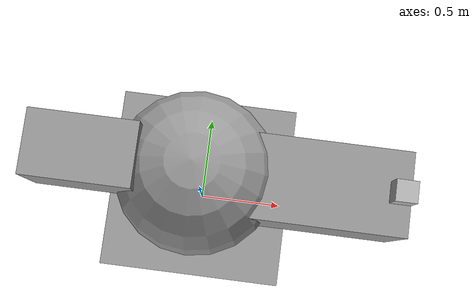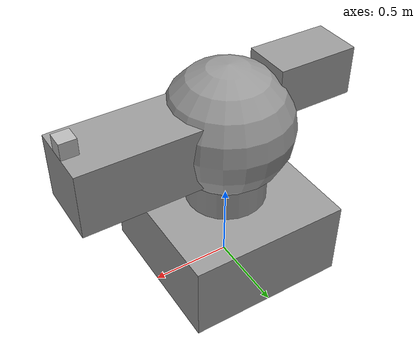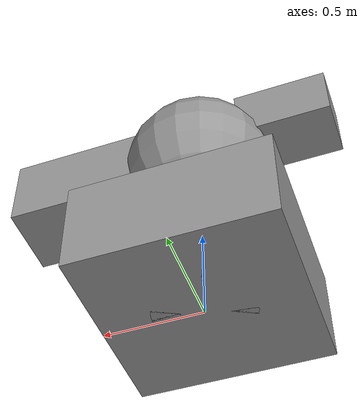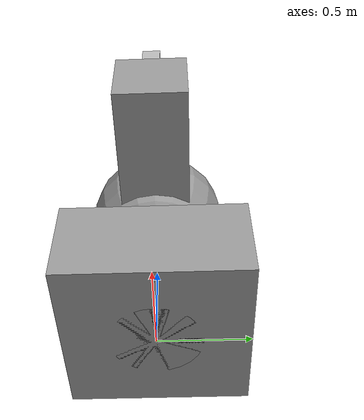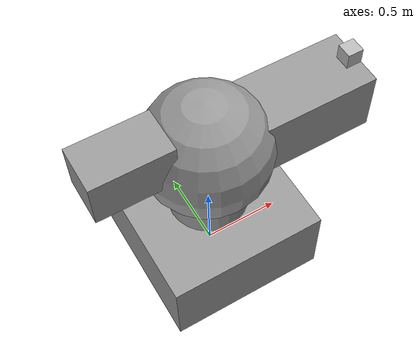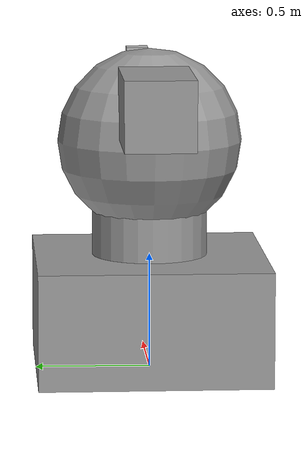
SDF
<?xml version='1.0'?>
<sdf version='1.6'>
  <model name='Gimbal_fixed'>
    <link name='barrel_link'>
      <pose frame=''>0.5 -0 1 0 -0 0</pose>
      <inertial>
        <mass>1</mass>
        <inertia>
          <ixx>0.166667</ixx>
          <ixy>0</ixy>
          <ixz>0</ixz>
          <iyy>0.166667</iyy>
          <iyz>0</iyz>
          <izz>0.166667</izz>
        </inertia>
        <pose frame=''>-0.5 0 0 0 -0 0</pose>
      </inertial>
      <self_collide>0</self_collide>
      <kinematic>0</kinematic>
      <visual name='ModelPreview_1::barrel_link::visual_3'>
        <pose frame=''>0 0 0 0 -0 0</pose>
        <geometry>
          <box>
            <size>1 0.4 0.4</size>
          </box>
        </geometry>
        <material>
          <lighting>1</lighting>
          <script>
            <uri>file://media/materials/scripts/gazebo.material</uri>
            <name>Gazebo/Grey</name>
          </script>
          <ambient>0.3 0.3 0.3 1</ambient>
          <diffuse>0.7 0.7 0.7 1</diffuse>
          <specular>0.01 0.01 0.01 1</specular>
          <emissive>0 0 0 1</emissive>
          <shader type='vertex'>
            <normal_map>__default__</normal_map>
          </shader>
        </material>
        <cast_shadows>1</cast_shadows>
        <transparency>0</transparency>
      </visual>
      <collision name='collision'>
        <laser_retro>0</laser_retro>
        <max_contacts>10</max_contacts>
        <pose frame=''>0 0 0 0 -0 0</pose>
        <geometry>
          <box>
            <size>1 0.4 0.4</size>
          </box>
        </geometry>
        <surface>
          <friction>
            <ode>
              <mu>1</mu>
              <mu2>1</mu2>
              <fdir1>0 0 0</fdir1>
              <slip1>0</slip1>
              <slip2>0</slip2>
            </ode>
            <torsional>
              <coefficient>1</coefficient>
              <patch_radius>0</patch_radius>
              <surface_radius>0</surface_radius>
              <use_patch_radius>1</use_patch_radius>
              <ode>
                <slip>0</slip>
              </ode>
            </torsional>
          </friction>
          <bounce>
            <restitution_coefficient>0</restitution_coefficient>
            <threshold>1e+06</threshold>
          </bounce>
          <contact>
            <collide_without_contact>0</collide_without_contact>
            <collide_without_contact_bitmask>1</collide_without_contact_bitmask>
            <collide_bitmask>1</collide_bitmask>
            <ode>
              <soft_cfm>0</soft_cfm>
              <soft_erp>0.2</soft_erp>
              <kp>1e+13</kp>
              <kd>1</kd>
              <max_vel>0.01</max_vel>
              <min_depth>0</min_depth>
            </ode>
            <bullet>
              <split_impulse>1</split_impulse>
              <split_impulse_penetration_threshold>-0.01</split_impulse_penetration_threshold>
              <soft_cfm>0</soft_cfm>
              <soft_erp>0.2</soft_erp>
              <kp>1e+13</kp>
              <kd>1</kd>
            </bullet>
          </contact>
        </surface>
      </collision>
    </link>
    <link name='link_0'>
      <pose frame=''>-0 0 0.25 0 -0 0</pose>
      <inertial>
        <mass>100</mass>
        <inertia>
          <ixx>0.166667</ixx>
          <ixy>0</ixy>
          <ixz>0</ixz>
          <iyy>0.166667</iyy>
          <iyz>0</iyz>
          <izz>0.166667</izz>
        </inertia>
        <pose frame=''>0 0 0 0 -0 0</pose>
      </inertial>
      <self_collide>0</self_collide>
      <kinematic>0</kinematic>
      <visual name='visual'>
        <pose frame=''>0 0 0 0 -0 0</pose>
        <geometry>
          <box>
            <size>1 1 0.5</size>
          </box>
        </geometry>
        <material>
          <lighting>1</lighting>
          <script>
            <uri>file://media/materials/scripts/gazebo.material</uri>
            <name>Gazebo/Grey</name>
          </script>
          <ambient>0.3 0.3 0.3 1</ambient>
          <diffuse>0.7 0.7 0.7 1</diffuse>
          <specular>0.01 0.01 0.01 1</specular>
          <emissive>0 0 0 1</emissive>
          <shader type='vertex'>
            <normal_map>__default__</normal_map>
          </shader>
        </material>
        <cast_shadows>1</cast_shadows>
        <transparency>0</transparency>
      </visual>
      <collision name='collision'>
        <laser_retro>0</laser_retro>
        <max_contacts>10</max_contacts>
        <pose frame=''>0 0 0 0 -0 0</pose>
        <geometry>
          <box>
            <size>1 1 0.5</size>
          </box>
        </geometry>
        <surface>
          <friction>
            <ode>
              <mu>1</mu>
              <mu2>1</mu2>
              <fdir1>0 0 0</fdir1>
              <slip1>0</slip1>
              <slip2>0</slip2>
            </ode>
            <torsional>
              <coefficient>1</coefficient>
              <patch_radius>0</patch_radius>
              <surface_radius>0</surface_radius>
              <use_patch_radius>1</use_patch_radius>
              <ode>
                <slip>0</slip>
              </ode>
            </torsional>
          </friction>
          <bounce>
            <restitution_coefficient>0</restitution_coefficient>
            <threshold>1e+06</threshold>
          </bounce>
          <contact>
            <collide_without_contact>0</collide_without_contact>
            <collide_without_contact_bitmask>1</collide_without_contact_bitmask>
            <collide_bitmask>1</collide_bitmask>
            <ode>
              <soft_cfm>0</soft_cfm>
              <soft_erp>0.2</soft_erp>
              <kp>1e+13</kp>
              <kd>1</kd>
              <max_vel>0.01</max_vel>
              <min_depth>0</min_depth>
            </ode>
            <bullet>
              <split_impulse>1</split_impulse>
              <split_impulse_penetration_threshold>-0.01</split_impulse_penetration_threshold>
              <soft_cfm>0</soft_cfm>
              <soft_erp>0.2</soft_erp>
              <kp>1e+13</kp>
              <kd>1</kd>
            </bullet>
          </contact>
        </surface>
      </collision>
    </link>
    <link name='link_1'>
      <pose frame=''>-0 0 0.5 0 -0 0</pose>
      <inertial>
        <mass>1</mass>
        <inertia>
          <ixx>0.145833</ixx>
          <ixy>0</ixy>
          <ixz>0</ixz>
          <iyy>0.145833</iyy>
          <iyz>0</iyz>
          <izz>0.125</izz>
        </inertia>
        <pose frame=''>0 0 0 0 -0 0</pose>
      </inertial>
      <self_collide>0</self_collide>
      <kinematic>0</kinematic>
      <gravity>0</gravity>
      <visual name='visual'>
        <pose frame=''>0 0 0 0 -0 0</pose>
        <geometry>
          <cylinder>
            <radius>0.25</radius>
            <length>1</length>
          </cylinder>
        </geometry>
        <material>
          <lighting>1</lighting>
          <script>
            <uri>file://media/materials/scripts/gazebo.material</uri>
            <name>Gazebo/Grey</name>
          </script>
          <ambient>0.3 0.3 0.3 1</ambient>
          <diffuse>0.7 0.7 0.7 1</diffuse>
          <specular>0.01 0.01 0.01 1</specular>
          <emissive>0 0 0 1</emissive>
          <shader type='vertex'>
            <normal_map>__default__</normal_map>
          </shader>
        </material>
        <cast_shadows>1</cast_shadows>
        <transparency>0</transparency>
      </visual>
    </link>
    <link name='link_2'>
      <pose frame=''>0 0 1 0 -0 0</pose>
      <inertial>
        <mass>1</mass>
        <inertia>
          <ixx>0.1</ixx>
          <ixy>0</ixy>
          <ixz>0</ixz>
          <iyy>0.1</iyy>
          <iyz>0</iyz>
          <izz>0.1</izz>
        </inertia>
        <pose frame=''>0 0 0 0 -0 0</pose>
      </inertial>
      <self_collide>0</self_collide>
      <kinematic>0</kinematic>
      <visual name='visual'>
        <pose frame=''>0 0 0 0 -0 0</pose>
        <geometry>
          <sphere>
            <radius>0.4</radius>
          </sphere>
        </geometry>
        <material>
          <lighting>1</lighting>
          <script>
            <uri>file://media/materials/scripts/gazebo.material</uri>
            <name>Gazebo/Grey</name>
          </script>
          <ambient>0.3 0.3 0.3 1</ambient>
          <diffuse>0.7 0.7 0.7 1</diffuse>
          <specular>0.01 0.01 0.01 1</specular>
          <emissive>0 0 0 1</emissive>
          <shader type='vertex'>
            <normal_map>__default__</normal_map>
          </shader>
        </material>
        <cast_shadows>1</cast_shadows>
        <transparency>0</transparency>
      </visual>
      <collision name='collision'>
        <laser_retro>0</laser_retro>
        <max_contacts>10</max_contacts>
        <pose frame=''>0 0 0 0 -0 0</pose>
        <geometry>
          <sphere>
            <radius>0.4</radius>
          </sphere>
        </geometry>
        <surface>
          <friction>
            <ode>
              <mu>1</mu>
              <mu2>1</mu2>
              <fdir1>0 0 0</fdir1>
              <slip1>0</slip1>
              <slip2>0</slip2>
            </ode>
            <torsional>
              <coefficient>1</coefficient>
              <patch_radius>0</patch_radius>
              <surface_radius>0</surface_radius>
              <use_patch_radius>1</use_patch_radius>
              <ode>
                <slip>0</slip>
              </ode>
            </torsional>
          </friction>
          <bounce>
            <restitution_coefficient>0</restitution_coefficient>
            <threshold>1e+06</threshold>
          </bounce>
          <contact>
            <collide_without_contact>0</collide_without_contact>
            <collide_without_contact_bitmask>1</collide_without_contact_bitmask>
            <collide_bitmask>1</collide_bitmask>
            <ode>
              <soft_cfm>0</soft_cfm>
              <soft_erp>0.2</soft_erp>
              <kp>1e+13</kp>
              <kd>1</kd>
              <max_vel>0.01</max_vel>
              <min_depth>0</min_depth>
            </ode>
            <bullet>
              <split_impulse>1</split_impulse>
              <split_impulse_penetration_threshold>-0.01</split_impulse_penetration_threshold>
              <soft_cfm>0</soft_cfm>
              <soft_erp>0.2</soft_erp>
              <kp>1e+13</kp>
              <kd>1</kd>
            </bullet>
          </contact>
        </surface>
      </collision>
    </link>
    <link name='mainboard_link'>
      <pose frame=''>-0.5 -0 1.2 0 -4e-06 4e-05</pose>
      <gravity>0</gravity>
      <inertial>
        <mass>1</mass>
        <inertia>
          <ixx>0.166667</ixx>
          <ixy>0</ixy>
          <ixz>0</ixz>
          <iyy>0.166667</iyy>
          <iyz>0</iyz>
          <izz>0.166667</izz>
        </inertia>
        <pose frame=''>0 0 0 0 -0 0</pose>
      </inertial>
      <self_collide>0</self_collide>
      <kinematic>0</kinematic>
      <sensor name='imu_sensor' type='imu'>
        <always_on>1</always_on>
        <update_rate>100</update_rate>
        <visualize>1</visualize>
        <topic>__default_topic__</topic>
        <plugin name='imu_plugin' filename='libgazebo_ros_imu_sensor.so'>
          <topicName>imu</topicName>
          <bodyName>imu_link</bodyName>
          <updateRateHZ>10.0</updateRateHZ>
          <gaussianNoise>0.0</gaussianNoise>
          <xyzOffset>0 0 0</xyzOffset>
          <rpyOffset>0 0 0</rpyOffset>
          <frameName>imu_link</frameName>
        </plugin>
        <pose frame=''>0 0 0 0 -0 0</pose>
      </sensor>
      <visual name='visual'>
        <pose frame=''>0 0 0 0 -0 0</pose>
        <geometry>
          <box>
            <size>0.5 0.3 0.3</size>
          </box>
        </geometry>
        <material>
          <lighting>1</lighting>
          <script>
            <uri>file://media/materials/scripts/gazebo.material</uri>
            <name>Gazebo/Grey</name>
          </script>
          <ambient>0.3 0.3 0.3 1</ambient>
          <diffuse>0.7 0.7 0.7 1</diffuse>
          <specular>0.01 0.01 0.01 1</specular>
          <emissive>0 0 0 1</emissive>
          <shader type='vertex'>
            <normal_map>__default__</normal_map>
          </shader>
        </material>
        <cast_shadows>1</cast_shadows>
        <transparency>0</transparency>
      </visual>
      <collision name='collision'>
        <laser_retro>0</laser_retro>
        <max_contacts>10</max_contacts>
        <pose frame=''>0 0 0 0 -0 0</pose>
        <geometry>
          <box>
            <size>0.5 0.3 0.3</size>
          </box>
        </geometry>
        <surface>
          <friction>
            <ode>
              <mu>1</mu>
              <mu2>1</mu2>
              <fdir1>0 0 0</fdir1>
              <slip1>0</slip1>
              <slip2>0</slip2>
            </ode>
            <torsional>
              <coefficient>1</coefficient>
              <patch_radius>0</patch_radius>
              <surface_radius>0</surface_radius>
              <use_patch_radius>1</use_patch_radius>
              <ode>
                <slip>0</slip>
              </ode>
            </torsional>
          </friction>
          <bounce>
            <restitution_coefficient>0</restitution_coefficient>
            <threshold>1e+06</threshold>
          </bounce>
          <contact>
            <collide_without_contact>0</collide_without_contact>
            <collide_without_contact_bitmask>1</collide_without_contact_bitmask>
            <collide_bitmask>1</collide_bitmask>
            <ode>
              <soft_cfm>0</soft_cfm>
              <soft_erp>0.2</soft_erp>
              <kp>1e+13</kp>
              <kd>1</kd>
              <max_vel>0.01</max_vel>
              <min_depth>0</min_depth>
            </ode>
            <bullet>
              <split_impulse>1</split_impulse>
              <split_impulse_penetration_threshold>-0.01</split_impulse_penetration_threshold>
              <soft_cfm>0</soft_cfm>
              <soft_erp>0.2</soft_erp>
              <kp>1e+13</kp>
              <kd>1</kd>
            </bullet>
          </contact>
        </surface>
      </collision>
    </link>
    <model name='camera'>
      <link name='link'>
        <gravity>0</gravity>
        <pose frame=''>0.05 0.05 0.05 0 -0 0</pose>
        <inertial>
          <mass>0.1</mass>
          <inertia>
            <ixx>1</ixx>
            <ixy>0</ixy>
            <ixz>0</ixz>
            <iyy>1</iyy>
            <iyz>0</iyz>
            <izz>1</izz>
          </inertia>
        </inertial>
        <visual name='visual'>
          <geometry>
            <box>
              <size>0.1 0.1 0.1</size>
            </box>
          </geometry>
        </visual>
        <sensor name='camera' type='camera'>
          <camera name='__default__'>
            <horizontal_fov>1.047</horizontal_fov>
            <image>
              <width>320</width>
              <height>240</height>
            </image>
            <clip>
              <near>0.1</near>
              <far>100</far>
            </clip>
          </camera>
          <plugin name='camera_controller' filename='libgazebo_ros_camera.so'>
            <alwaysOn>true</alwaysOn>
            <updateRate>0.0</updateRate>
            <cameraName>rrbot/camera1</cameraName>
            <imageTopicName>image_raw</imageTopicName>
            <cameraInfoTopicName>camera_info</cameraInfoTopicName>
            <frameName>camera_link</frameName>
            <hackBaseline>0.07</hackBaseline>
            <distortionK1>0.0</distortionK1>
            <distortionK2>0.0</distortionK2>
            <distortionK3>0.0</distortionK3>
            <distortionT1>0.0</distortionT1>
            <distortionT2>0.0</distortionT2>
          </plugin>
          <always_on>1</always_on>
          <update_rate>30</update_rate>
          <visualize>1</visualize>
        </sensor>
        <self_collide>0</self_collide>
        <kinematic>0</kinematic>
      </link>
      <pose frame=''>0.9 -0.05 1.2 0 0 0</pose>
    </model>
    <joint name='gimbal_pitch_joint' type='revolute'>
      <parent>link_2</parent>
      <child>barrel_link</child>
      <pose frame=''>-0.5 0 0 0 -0 0</pose>
      <axis>
        <xyz>0 1 0</xyz>
        <use_parent_model_frame>0</use_parent_model_frame>
        <limit>
          <lower>-1.79769e+308</lower>
          <upper>1.79769e+308</upper>
          <effort>-100</effort>
          <velocity>-20</velocity>
        </limit>
        <dynamics>
          <spring_reference>0</spring_reference>
          <spring_stiffness>0</spring_stiffness>
          <damping>0</damping>
          <friction>0</friction>
        </dynamics>
      </axis>
      <physics>
        <ode>
          <limit>
            <cfm>0</cfm>
            <erp>0.2</erp>
          </limit>
          <suspension>
            <cfm>0</cfm>
            <erp>0.2</erp>
          </suspension>
        </ode>
      </physics>
    </joint>
    <joint name='gimbal_yaw_joint' type='revolute'>
      <parent>link_0</parent>
      <child>link_1</child>
      <pose frame=''>0 0 0 0 -0 0</pose>
      <axis>
        <xyz>0 0 1</xyz>
        <use_parent_model_frame>0</use_parent_model_frame>
        <limit>
          <lower>-1.79769e+308</lower>
          <upper>1.79769e+308</upper>
          <effort>-100</effort>
          <velocity>-20</velocity>
        </limit>
        <dynamics>
          <spring_reference>0</spring_reference>
          <spring_stiffness>0</spring_stiffness>
          <damping>0</damping>
          <friction>0</friction>
        </dynamics>
      </axis>
      <physics>
        <ode>
          <limit>
            <cfm>0</cfm>
            <erp>0.2</erp>
          </limit>
          <suspension>
            <cfm>0</cfm>
            <erp>0.2</erp>
          </suspension>
        </ode>
      </physics>
    </joint>
    <joint name='link_1_JOINT_1' type='fixed'>
      <parent>link_1</parent>
      <child>link_2</child>
      <pose frame=''>0 0 0 0 -0 0</pose>
      <physics>
        <ode>
          <limit>
            <cfm>0</cfm>
            <erp>0.2</erp>
          </limit>
          <suspension>
            <cfm>0</cfm>
            <erp>0.2</erp>
          </suspension>
        </ode>
      </physics>
    </joint>
    <joint name='link_JOINT_0' type='fixed'>
      <parent>barrel_link</parent>
      <child>camera::link</child>
      <pose frame=''>0 0 0 0 -0 0</pose>
      <physics>
        <ode>
          <limit>
            <cfm>0</cfm>
            <erp>0.2</erp>
          </limit>
          <suspension>
            <cfm>0</cfm>
            <erp>0.2</erp>
          </suspension>
        </ode>
      </physics>
    </joint>
    <joint name='mainboard_link_JOINT_0' type='fixed'>
      <parent>mainboard_link</parent>
      <child>barrel_link</child>
      <pose frame=''>0 0 0 0 -0 0</pose>
      <physics>
        <ode>
          <limit>
            <cfm>0</cfm>
            <erp>0.2</erp>
          </limit>
          <suspension>
            <cfm>0</cfm>
            <erp>0.2</erp>
          </suspension>
        </ode>
      </physics>
    </joint>
    <static>0</static>
    <allow_auto_disable>1</allow_auto_disable>
    <!--modify the following line to your own absolute path  -->
    <plugin name='GimbalControlPlugin' filename='/home/huier/Projects/robomaster/gimbal_sim_gazebo/set_vel_plugin/build/libGimbalControlPlugin.so'>
    </plugin>
  </model>
</sdf>
